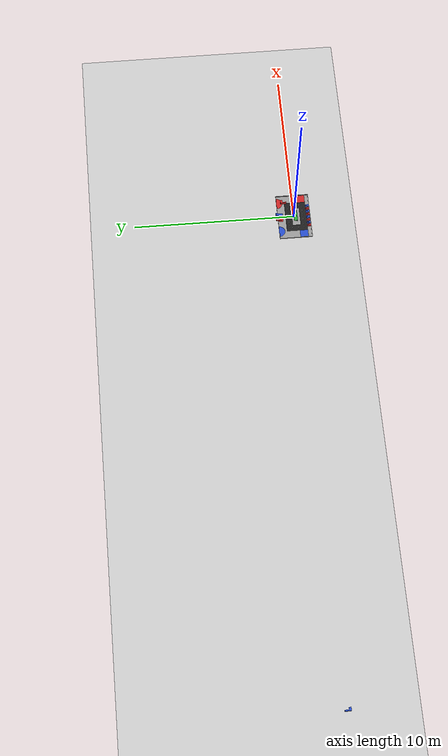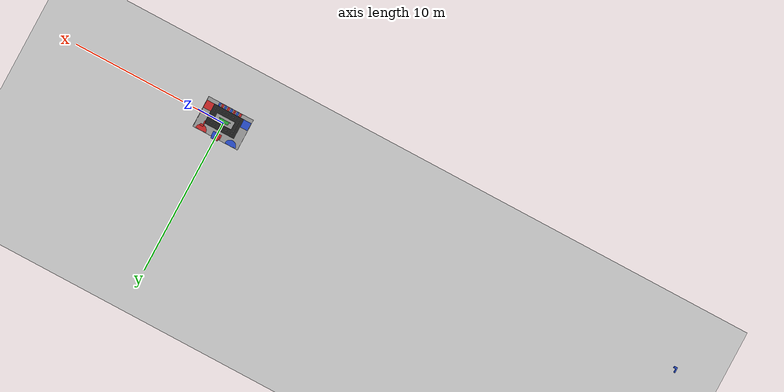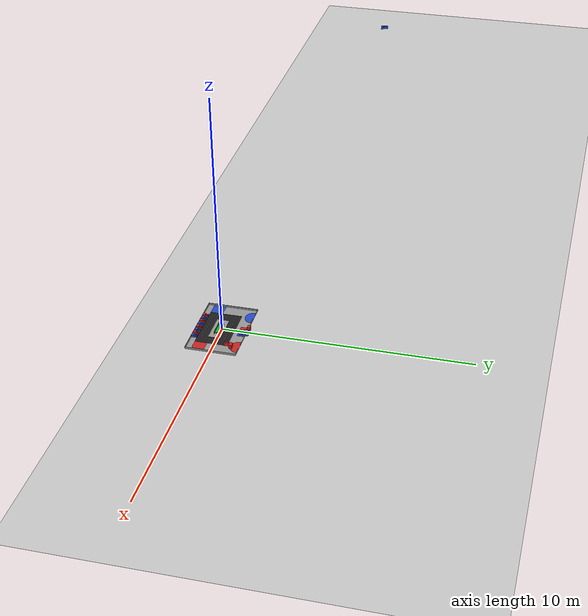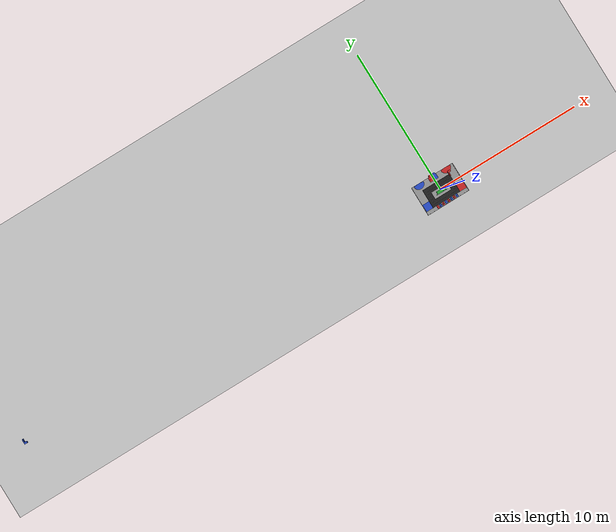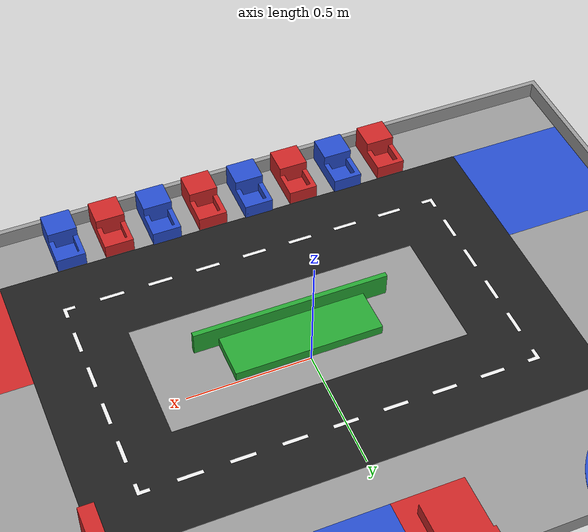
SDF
<sdf version="1.6">
 <world name="default">
  <light name="sun" type="directional">
   <pose>0 0 10 0 -0 0</pose>
   <diffuse>0.8 0.8 0.8 1</diffuse>
   <specular>0.2 0.2 0.2 1</specular>
   <attenuation>
    <range>1000</range>
    <constant>0.9</constant>
    <linear>0.01</linear>
    <quadratic>0.001</quadratic>
   </attenuation>
   <direction>-0.5 0.1 -0.9</direction>
  </light>
  <gravity>0 0 -9.8</gravity>
  <magnetic_field>6e-06 2.3e-05 -4.2e-05</magnetic_field>
  <atmosphere type="adiabatic"/>
  <physics name="default_physics" default="0" type="ode">
   <max_step_size>0.001</max_step_size>
   <real_time_factor>1</real_time_factor>
   <real_time_update_rate>1000</real_time_update_rate>
  </physics>
  <scene><ambient>0.4 0.4 0.4 1</ambient><background>0.7 0.7 0.7 1</background><shadows>1</shadows></scene>
  <audio><device>default</device></audio>
  <spherical_coordinates>
   <surface_model>EARTH_WGS84</surface_model>
   <latitude_deg>0</latitude_deg>
   <longitude_deg>0</longitude_deg>
   <elevation>0</elevation>
   <heading_deg>0</heading_deg>
  </spherical_coordinates>
  <model name="ground_plane">
   <static>1</static>
   <link name="link">
    <collision name="collision">
     <geometry><plane><normal>0 0 1</normal><size>100 100</size></plane></geometry>
     <surface><friction><ode><mu>100</mu><mu2>50</mu2></ode></friction></surface>
    </collision>
    <visual name="visual">
     <cast_shadows>0</cast_shadows>
     <geometry><plane><normal>0 0 1</normal><size>100 100</size></plane></geometry>
     <material>
      <script><uri>file://media/materials/scripts/gazebo.material</uri><name>Gazebo/Grey</name></script>
     </material>
    </visual>
   </link>
   <pose>3.08213 1.05988 0 0 -0 0</pose>
  </model>
  <model name="background">
   <static>1</static>
   <link name="link_0">
    <inertial>
     <mass>1</mass>
     <inertia>
      <ixx>0.166667</ixx>
      <ixy>0</ixy>
      <ixz>0</ixz>
      <iyy>0.166667</iyy>
      <iyz>0</iyz>
      <izz>0.166667</izz>
     </inertia>
    </inertial>
    <visual name="visual">
     <geometry><mesh><uri>model://playground.dae</uri><scale>1 1 1</scale></mesh></geometry>
     <material>
      <lighting>1</lighting>
      <script><uri>file://media/materials/scripts/gazebo.material</uri><name>Gazebo/Grey</name></script>
      <shader type="vertex"><normal_map>__default__</normal_map></shader>
      <ambient>0.3 0.3 0.3 1</ambient>
      <diffuse>0.7 0.7 0.7 1</diffuse>
      <specular>0.01 0.01 0.01 1</specular>
      <emissive>0 0 0 1</emissive>
     </material>
    </visual>
    <collision name="collision">
     <geometry><mesh><uri>model://playground.dae</uri><scale>1 1 1</scale></mesh></geometry>
     <surface>
      <friction>
       <ode><mu>1</mu><mu2>1</mu2><fdir1>0 0 0</fdir1><slip1>0</slip1><slip2>0</slip2></ode>
       <torsional>
        <coefficient>1</coefficient>
        <patch_radius>0</patch_radius>
        <surface_radius>0</surface_radius>
        <use_patch_radius>1</use_patch_radius>
        <ode><slip>0</slip></ode>
       </torsional>
      </friction>
      <bounce><restitution_coefficient>0</restitution_coefficient><threshold>1e+06</threshold></bounce>
      <contact>
       <collide_without_contact>0</collide_without_contact>
       <collide_without_contact_bitmask>1</collide_without_contact_bitmask>
       <collide_bitmask>1</collide_bitmask>
       <ode>
        <soft_cfm>0</soft_cfm>
        <soft_erp>0.2</soft_erp>
        <kp>1e+13</kp>
        <kd>1</kd>
        <max_vel>0.01</max_vel>
        <min_depth>0</min_depth>
       </ode>
       <bullet>
        <split_impulse>1</split_impulse>
        <split_impulse_penetration_threshold>-0.01</split_impulse_penetration_threshold>
        <soft_cfm>0</soft_cfm>
        <soft_erp>0.2</soft_erp>
        <kp>1e+13</kp>
        <kd>1</kd>
       </bullet>
      </contact>
     </surface>
    </collision>
   </link>
   <static>0</static>
  </model>
  <model name="asphalt">
   <static>1</static>
   <link name="link_1">
    <inertial>
     <mass>1</mass>
     <inertia>
      <ixx>0.166667</ixx>
      <ixy>0</ixy>
      <ixz>0</ixz>
      <iyy>0.166667</iyy>
      <iyz>0</iyz>
      <izz>0.166667</izz>
     </inertia>
    </inertial>
    <visual name="visual">
     <geometry><mesh><uri>model://asphalt.dae</uri><scale>1 1 1</scale></mesh></geometry>
     <material>
      <lighting>1</lighting>
      <script><uri>file://media/materials/scripts/gazebo.material</uri><name>Gazebo/Black</name></script>
      <shader type="vertex"><normal_map>__default__</normal_map></shader>
      <ambient>0 0 0 1</ambient>
      <diffuse>0 0 0 1</diffuse>
      <specular>0.1 0.1 0.1 1</specular>
      <emissive>0 0 0 1</emissive>
     </material>
    </visual>
    <collision name="collision">
     <geometry><mesh><uri>model://asphalt.dae</uri><scale>1 1 1</scale></mesh></geometry>
     <surface>
      <friction>
       <ode><mu>1</mu><mu2>1</mu2><fdir1>0 0 0</fdir1><slip1>0</slip1><slip2>0</slip2></ode>
       <torsional>
        <coefficient>1</coefficient>
        <patch_radius>0</patch_radius>
        <surface_radius>0</surface_radius>
        <use_patch_radius>1</use_patch_radius>
        <ode><slip>0</slip></ode>
       </torsional>
      </friction>
      <bounce><restitution_coefficient>0</restitution_coefficient><threshold>1e+06</threshold></bounce>
      <contact>
       <collide_without_contact>0</collide_without_contact>
       <collide_without_contact_bitmask>1</collide_without_contact_bitmask>
       <collide_bitmask>1</collide_bitmask>
       <ode>
        <soft_cfm>0</soft_cfm>
        <soft_erp>0.2</soft_erp>
        <kp>1e+13</kp>
        <kd>1</kd>
        <max_vel>0.01</max_vel>
        <min_depth>0</min_depth>
       </ode>
       <bullet>
        <split_impulse>1</split_impulse>
        <split_impulse_penetration_threshold>-0.01</split_impulse_penetration_threshold>
        <soft_cfm>0</soft_cfm>
        <soft_erp>0.2</soft_erp>
        <kp>1e+13</kp>
        <kd>1</kd>
       </bullet>
      </contact>
     </surface>
    </collision>
   </link>
   <static>0</static>
  </model>
  <model name="stripes">
   <static>1</static>
   <link name="link_2">
    <inertial>
     <mass>1</mass>
     <inertia>
      <ixx>0.166667</ixx>
      <ixy>0</ixy>
      <ixz>0</ixz>
      <iyy>0.166667</iyy>
      <iyz>0</iyz>
      <izz>0.166667</izz>
     </inertia>
    </inertial>
    <pose>-0 0.0001 -0.009044 0 -0 0</pose>
    <visual name="visual">
     <geometry><mesh><uri>model://stripes.dae</uri><scale>1 1 1</scale></mesh></geometry>
     <material>
      <lighting>1</lighting>
      <script><uri>file://media/materials/scripts/gazebo.material</uri><name>Gazebo/White</name></script>
      <shader type="vertex"><normal_map>__default__</normal_map></shader>
      <ambient>1 1 1 1</ambient>
      <diffuse>0.7 0.7 0.7 1</diffuse>
      <specular>0.01 0.01 0.01 1</specular>
      <emissive>0 0 0 1</emissive>
     </material>
    </visual>
    <collision name="collision">
     <geometry><mesh><uri>model://stripes.dae</uri><scale>1 1 1</scale></mesh></geometry>
     <surface>
      <friction>
       <ode><mu>1</mu><mu2>1</mu2><fdir1>0 0 0</fdir1><slip1>0</slip1><slip2>0</slip2></ode>
       <torsional>
        <coefficient>1</coefficient>
        <patch_radius>0</patch_radius>
        <surface_radius>0</surface_radius>
        <use_patch_radius>1</use_patch_radius>
        <ode><slip>0</slip></ode>
       </torsional>
      </friction>
      <bounce><restitution_coefficient>0</restitution_coefficient><threshold>1e+06</threshold></bounce>
      <contact>
       <collide_without_contact>0</collide_without_contact>
       <collide_without_contact_bitmask>1</collide_without_contact_bitmask>
       <collide_bitmask>1</collide_bitmask>
       <ode>
        <soft_cfm>0</soft_cfm>
        <soft_erp>0.2</soft_erp>
        <kp>1e+13</kp>
        <kd>1</kd>
        <max_vel>0.01</max_vel>
        <min_depth>0</min_depth>
       </ode>
       <bullet>
        <split_impulse>1</split_impulse>
        <split_impulse_penetration_threshold>-0.01</split_impulse_penetration_threshold>
        <soft_cfm>0</soft_cfm>
        <soft_erp>0.2</soft_erp>
        <kp>1e+13</kp>
        <kd>1</kd>
       </bullet>
      </contact>
     </surface>
    </collision>
   </link>
   <static>0</static>
  </model>
  <model name="blue_truck_target">
   <static>1</static>
   <link name="link_0">
    <inertial>
     <mass>1</mass>
     <inertia>
      <ixx>0.166667</ixx>
      <ixy>0</ixy>
      <ixz>0</ixz>
      <iyy>0.166667</iyy>
      <iyz>0</iyz>
      <izz>0.166667</izz>
     </inertia>
    </inertial>
    <visual name="visual">
     <geometry><mesh><uri>model://blue_truck_target.dae</uri><scale>1 1 1</scale></mesh></geometry>
     <material>
      <lighting>1</lighting>
      <script><uri>file://media/materials/scripts/gazebo.material</uri><name>Gazebo/Blue</name></script>
      <shader type="vertex"><normal_map>__default__</normal_map></shader>
      <ambient>0 0 1 1</ambient>
      <diffuse>0 0 1 1</diffuse>
      <specular>0.1 0.1 0.1 1</specular>
      <emissive>0 0 0 1</emissive>
     </material>
    </visual>
    <collision name="collision">
     <geometry><mesh><uri>model://blue_truck_target.dae</uri><scale>1 1 1</scale></mesh></geometry>
     <surface>
      <friction>
       <ode><mu>1</mu><mu2>1</mu2><fdir1>0 0 0</fdir1><slip1>0</slip1><slip2>0</slip2></ode>
       <torsional>
        <coefficient>1</coefficient>
        <patch_radius>0</patch_radius>
        <surface_radius>0</surface_radius>
        <use_patch_radius>1</use_patch_radius>
        <ode><slip>0</slip></ode>
       </torsional>
      </friction>
      <bounce><restitution_coefficient>0</restitution_coefficient><threshold>1e+06</threshold></bounce>
      <contact>
       <collide_without_contact>0</collide_without_contact>
       <collide_without_contact_bitmask>1</collide_without_contact_bitmask>
       <collide_bitmask>1</collide_bitmask>
       <ode>
        <soft_cfm>0</soft_cfm>
        <soft_erp>0.2</soft_erp>
        <kp>1e+13</kp>
        <kd>1</kd>
        <max_vel>0.01</max_vel>
        <min_depth>0</min_depth>
       </ode>
       <bullet>
        <split_impulse>1</split_impulse>
        <split_impulse_penetration_threshold>-0.01</split_impulse_penetration_threshold>
        <soft_cfm>0</soft_cfm>
        <soft_erp>0.2</soft_erp>
        <kp>1e+13</kp>
        <kd>1</kd>
       </bullet>
      </contact>
     </surface>
    </collision>
   </link>
   <link name="link_1">
    <inertial>
     <mass>1</mass>
     <inertia>
      <ixx>0.166667</ixx>
      <ixy>0</ixy>
      <ixz>0</ixz>
      <iyy>0.166667</iyy>
      <iyz>0</iyz>
      <izz>0.166667</izz>
     </inertia>
    </inertial>
    <visual name="visual">
     <geometry><mesh><uri>model://red_truck_target.dae</uri><scale>1 1 1</scale></mesh></geometry>
     <material>
      <lighting>1</lighting>
      <script><uri>file://media/materials/scripts/gazebo.material</uri><name>Gazebo/Red</name></script>
      <shader type="vertex"><normal_map>__default__</normal_map></shader>
      <ambient>1 0 0 1</ambient>
      <diffuse>1 0 0 1</diffuse>
      <specular>0.1 0.1 0.1 1</specular>
      <emissive>0 0 0 1</emissive>
     </material>
    </visual>
    <collision name="collision">
     <geometry><mesh><uri>model://red_truck_target.dae</uri><scale>1 1 1</scale></mesh></geometry>
     <surface>
      <friction>
       <ode><mu>1</mu><mu2>1</mu2><fdir1>0 0 0</fdir1><slip1>0</slip1><slip2>0</slip2></ode>
       <torsional>
        <coefficient>1</coefficient>
        <patch_radius>0</patch_radius>
        <surface_radius>0</surface_radius>
        <use_patch_radius>1</use_patch_radius>
        <ode><slip>0</slip></ode>
       </torsional>
      </friction>
      <bounce><restitution_coefficient>0</restitution_coefficient><threshold>1e+06</threshold></bounce>
      <contact>
       <collide_without_contact>0</collide_without_contact>
       <collide_without_contact_bitmask>1</collide_without_contact_bitmask>
       <collide_bitmask>1</collide_bitmask>
       <ode>
        <soft_cfm>0</soft_cfm>
        <soft_erp>0.2</soft_erp>
        <kp>1e+13</kp>
        <kd>1</kd>
        <max_vel>0.01</max_vel>
        <min_depth>0</min_depth>
       </ode>
       <bullet>
        <split_impulse>1</split_impulse>
        <split_impulse_penetration_threshold>-0.01</split_impulse_penetration_threshold>
        <soft_cfm>0</soft_cfm>
        <soft_erp>0.2</soft_erp>
        <kp>1e+13</kp>
        <kd>1</kd>
       </bullet>
      </contact>
     </surface>
    </collision>
   </link>
   <static>0</static>
  </model>
  <model name="center">
   <static>1</static>
   <link name="link_2">
    <inertial>
     <mass>1</mass>
     <inertia>
      <ixx>0.166667</ixx>
      <ixy>0</ixy>
      <ixz>0</ixz>
      <iyy>0.166667</iyy>
      <iyz>0</iyz>
      <izz>0.166667</izz>
     </inertia>
    </inertial>
    <visual name="visual">
     <geometry><mesh><uri>model://center.dae</uri><scale>1 1 1</scale></mesh></geometry>
     <material>
      <lighting>1</lighting>
      <script><uri>file://media/materials/scripts/gazebo.material</uri><name>Gazebo/Green</name></script>
      <shader type="vertex"><normal_map>__default__</normal_map></shader>
      <ambient>0 1 0 1</ambient>
      <diffuse>0 1 0 1</diffuse>
      <specular>0.1 0.1 0.1 1</specular>
      <emissive>0 0 0 1</emissive>
     </material>
    </visual>
    <collision name="collision">
     <geometry><mesh><uri>model://center.dae</uri><scale>1 1 1</scale></mesh></geometry>
     <surface>
      <friction>
       <ode><mu>1</mu><mu2>1</mu2><fdir1>0 0 0</fdir1><slip1>0</slip1><slip2>0</slip2></ode>
       <torsional>
        <coefficient>1</coefficient>
        <patch_radius>0</patch_radius>
        <surface_radius>0</surface_radius>
        <use_patch_radius>1</use_patch_radius>
        <ode><slip>0</slip></ode>
       </torsional>
      </friction>
      <bounce><restitution_coefficient>0</restitution_coefficient><threshold>1e+06</threshold></bounce>
      <contact>
       <collide_without_contact>0</collide_without_contact>
       <collide_without_contact_bitmask>1</collide_without_contact_bitmask>
       <collide_bitmask>1</collide_bitmask>
       <ode>
        <soft_cfm>0</soft_cfm>
        <soft_erp>0.2</soft_erp>
        <kp>1e+13</kp>
        <kd>1</kd>
        <max_vel>0.01</max_vel>
        <min_depth>0</min_depth>
       </ode>
       <bullet>
        <split_impulse>1</split_impulse>
        <split_impulse_penetration_threshold>-0.01</split_impulse_penetration_threshold>
        <soft_cfm>0</soft_cfm>
        <soft_erp>0.2</soft_erp>
        <kp>1e+13</kp>
        <kd>1</kd>
       </bullet>
      </contact>
     </surface>
    </collision>
   </link>
   <static>0</static>
  </model>
  <model name="red_square">
   <static>1</static>
   <link name="link_5">
    <inertial>
     <mass>1</mass>
     <inertia>
      <ixx>0.166667</ixx>
      <ixy>0</ixy>
      <ixz>0</ixz>
      <iyy>0.166667</iyy>
      <iyz>0</iyz>
      <izz>0.166667</izz>
     </inertia>
    </inertial>
    <visual name="visual">
     <geometry><mesh><uri>model://blue_square.dae</uri><scale>1 1 1</scale></mesh></geometry>
     <material>
      <lighting>1</lighting>
      <script><uri>file://media/materials/scripts/gazebo.material</uri><name>Gazebo/Blue</name></script>
      <shader type="vertex"><normal_map>__default__</normal_map></shader>
      <ambient>0 0 1 1</ambient>
      <diffuse>0 0 1 1</diffuse>
      <specular>0.1 0.1 0.1 1</specular>
      <emissive>0 0 0 1</emissive>
     </material>
    </visual>
    <collision name="collision">
     <geometry><mesh><uri>model://blue_square.dae</uri><scale>1 1 1</scale></mesh></geometry>
     <surface>
      <friction>
       <ode><mu>1</mu><mu2>1</mu2><fdir1>0 0 0</fdir1><slip1>0</slip1><slip2>0</slip2></ode>
       <torsional>
        <coefficient>1</coefficient>
        <patch_radius>0</patch_radius>
        <surface_radius>0</surface_radius>
        <use_patch_radius>1</use_patch_radius>
        <ode><slip>0</slip></ode>
       </torsional>
      </friction>
      <bounce><restitution_coefficient>0</restitution_coefficient><threshold>1e+06</threshold></bounce>
      <contact>
       <collide_without_contact>0</collide_without_contact>
       <collide_without_contact_bitmask>1</collide_without_contact_bitmask>
       <collide_bitmask>1</collide_bitmask>
       <ode>
        <soft_cfm>0</soft_cfm>
        <soft_erp>0.2</soft_erp>
        <kp>1e+13</kp>
        <kd>1</kd>
        <max_vel>0.01</max_vel>
        <min_depth>0</min_depth>
       </ode>
       <bullet>
        <split_impulse>1</split_impulse>
        <split_impulse_penetration_threshold>-0.01</split_impulse_penetration_threshold>
        <soft_cfm>0</soft_cfm>
        <soft_erp>0.2</soft_erp>
        <kp>1e+13</kp>
        <kd>1</kd>
       </bullet>
      </contact>
     </surface>
    </collision>
   </link>
   <link name="link_6">
    <inertial>
     <mass>1</mass>
     <inertia>
      <ixx>0.166667</ixx>
      <ixy>0</ixy>
      <ixz>0</ixz>
      <iyy>0.166667</iyy>
      <iyz>0</iyz>
      <izz>0.166667</izz>
     </inertia>
    </inertial>
    <visual name="visual">
     <geometry><mesh><uri>model://red_square.dae</uri><scale>1 1 1</scale></mesh></geometry>
     <material>
      <lighting>1</lighting>
      <script><uri>file://media/materials/scripts/gazebo.material</uri><name>Gazebo/Red</name></script>
      <shader type="vertex"><normal_map>__default__</normal_map></shader>
      <ambient>1 0 0 1</ambient>
      <diffuse>1 0 0 1</diffuse>
      <specular>0.1 0.1 0.1 1</specular>
      <emissive>0 0 0 1</emissive>
     </material>
    </visual>
    <collision name="collision">
     <geometry><mesh><uri>model://red_square.dae</uri><scale>1 1 1</scale></mesh></geometry>
     <surface>
      <friction>
       <ode><mu>1</mu><mu2>1</mu2><fdir1>0 0 0</fdir1><slip1>0</slip1><slip2>0</slip2></ode>
       <torsional>
        <coefficient>1</coefficient>
        <patch_radius>0</patch_radius>
        <surface_radius>0</surface_radius>
        <use_patch_radius>1</use_patch_radius>
        <ode><slip>0</slip></ode>
       </torsional>
      </friction>
      <bounce><restitution_coefficient>0</restitution_coefficient><threshold>1e+06</threshold></bounce>
      <contact>
       <collide_without_contact>0</collide_without_contact>
       <collide_without_contact_bitmask>1</collide_without_contact_bitmask>
       <collide_bitmask>1</collide_bitmask>
       <ode>
        <soft_cfm>0</soft_cfm>
        <soft_erp>0.2</soft_erp>
        <kp>1e+13</kp>
        <kd>1</kd>
        <max_vel>0.01</max_vel>
        <min_depth>0</min_depth>
       </ode>
       <bullet>
        <split_impulse>1</split_impulse>
        <split_impulse_penetration_threshold>-0.01</split_impulse_penetration_threshold>
        <soft_cfm>0</soft_cfm>
        <soft_erp>0.2</soft_erp>
        <kp>1e+13</kp>
        <kd>1</kd>
       </bullet>
      </contact>
     </surface>
    </collision>
   </link>
   <static>0</static>
  </model>
  <model name="blue_half_cylinder">
   <static>1</static>
   <link name="link_7">
    <inertial>
     <mass>1</mass>
     <inertia>
      <ixx>0.166667</ixx>
      <ixy>0</ixy>
      <ixz>0</ixz>
      <iyy>0.166667</iyy>
      <iyz>0</iyz>
      <izz>0.166667</izz>
     </inertia>
    </inertial>
    <visual name="visual">
     <geometry><mesh><uri>model://red_half_cylinder.dae</uri><scale>1 1 1</scale></mesh></geometry>
     <material>
      <lighting>1</lighting>
      <script><uri>file://media/materials/scripts/gazebo.material</uri><name>Gazebo/Red</name></script>
      <shader type="vertex"><normal_map>__default__</normal_map></shader>
      <ambient>1 0 0 1</ambient>
      <diffuse>1 0 0 1</diffuse>
      <specular>0.1 0.1 0.1 1</specular>
      <emissive>0 0 0 1</emissive>
     </material>
    </visual>
    <collision name="collision">
     <geometry><mesh><uri>model://red_half_cylinder.dae</uri><scale>1 1 1</scale></mesh></geometry>
     <surface>
      <friction>
       <ode><mu>1</mu><mu2>1</mu2><fdir1>0 0 0</fdir1><slip1>0</slip1><slip2>0</slip2></ode>
       <torsional>
        <coefficient>1</coefficient>
        <patch_radius>0</patch_radius>
        <surface_radius>0</surface_radius>
        <use_patch_radius>1</use_patch_radius>
        <ode><slip>0</slip></ode>
       </torsional>
      </friction>
      <bounce><restitution_coefficient>0</restitution_coefficient><threshold>1e+06</threshold></bounce>
      <contact>
       <collide_without_contact>0</collide_without_contact>
       <collide_without_contact_bitmask>1</collide_without_contact_bitmask>
       <collide_bitmask>1</collide_bitmask>
       <ode>
        <soft_cfm>0</soft_cfm>
        <soft_erp>0.2</soft_erp>
        <kp>1e+13</kp>
        <kd>1</kd>
        <max_vel>0.01</max_vel>
        <min_depth>0</min_depth>
       </ode>
       <bullet>
        <split_impulse>1</split_impulse>
        <split_impulse_penetration_threshold>-0.01</split_impulse_penetration_threshold>
        <soft_cfm>0</soft_cfm>
        <soft_erp>0.2</soft_erp>
        <kp>1e+13</kp>
        <kd>1</kd>
       </bullet>
      </contact>
     </surface>
    </collision>
   </link>
   <link name="link_8">
    <inertial>
     <mass>1</mass>
     <inertia>
      <ixx>0.166667</ixx>
      <ixy>0</ixy>
      <ixz>0</ixz>
      <iyy>0.166667</iyy>
      <iyz>0</iyz>
      <izz>0.166667</izz>
     </inertia>
    </inertial>
    <visual name="visual">
     <geometry><mesh><uri>model://blue_half_cylinder.dae</uri><scale>1 1 1</scale></mesh></geometry>
     <material>
      <lighting>1</lighting>
      <script><uri>file://media/materials/scripts/gazebo.material</uri><name>Gazebo/Blue</name></script>
      <shader type="vertex"><normal_map>__default__</normal_map></shader>
      <ambient>0 0 1 1</ambient>
      <diffuse>0 0 1 1</diffuse>
      <specular>0.1 0.1 0.1 1</specular>
      <emissive>0 0 0 1</emissive>
     </material>
    </visual>
    <collision name="collision">
     <geometry><mesh><uri>model://blue_half_cylinder.dae</uri><scale>1 1 1</scale></mesh></geometry>
     <surface>
      <friction>
       <ode><mu>1</mu><mu2>1</mu2><fdir1>0 0 0</fdir1><slip1>0</slip1><slip2>0</slip2></ode>
       <torsional>
        <coefficient>1</coefficient>
        <patch_radius>0</patch_radius>
        <surface_radius>0</surface_radius>
        <use_patch_radius>1</use_patch_radius>
        <ode><slip>0</slip></ode>
       </torsional>
      </friction>
      <bounce><restitution_coefficient>0</restitution_coefficient><threshold>1e+06</threshold></bounce>
      <contact>
       <collide_without_contact>0</collide_without_contact>
       <collide_without_contact_bitmask>1</collide_without_contact_bitmask>
       <collide_bitmask>1</collide_bitmask>
       <ode>
        <soft_cfm>0</soft_cfm>
        <soft_erp>0.2</soft_erp>
        <kp>1e+13</kp>
        <kd>1</kd>
        <max_vel>0.01</max_vel>
        <min_depth>0</min_depth>
       </ode>
       <bullet>
        <split_impulse>1</split_impulse>
        <split_impulse_penetration_threshold>-0.01</split_impulse_penetration_threshold>
        <soft_cfm>0</soft_cfm>
        <soft_erp>0.2</soft_erp>
        <kp>1e+13</kp>
        <kd>1</kd>
       </bullet>
      </contact>
     </surface>
    </collision>
   </link>
   <static>0</static>
  </model>
  <include><uri>model://red_truck</uri><pose>1.06165 0.691468 0.080746 0 -0 0</pose></include>
  <include><uri>model://blue_truck</uri><pose>-30.81448 0.10004 0.075998 -3.14159 0 0</pose></include>
  <model name="blue_car_1">
   <include><uri>model://blue_car</uri><pose>0.7 -0.913236 0.044351 0 0  1.5708</pose></include>
  </model>
  <model name="blue_car_2">
   <include><uri>model://blue_car</uri><pose>0.3 -0.90834 0.043375 0 0 1.57088</pose></include>
  </model>
  <model name="blue_car_3">
   <include><uri>model://blue_car</uri><pose>-0.1 -0.90834 0.043375 0 0 1.570888</pose></include>
  </model>
  <model name="blue_car_4">
   <include><uri>model://blue_car</uri><pose>-0.5 -0.90834 0.043375 0 0 1.57088</pose></include>
  </model>
  <model name="red_car_1">
   <include><uri>model://red_car</uri><pose>0.5 -0.913236 0.044351 0 0  1.5708</pose></include>
  </model>
  <model name="red_car_2">
   <include><uri>model://red_car</uri><pose>0.1 -0.913236 0.044351 0 0  1.5708</pose></include>
  </model>
  <model name="red_car_3">
   <include><uri>model://red_car</uri><pose>-0.3 -0.913236 0.044351 0 0  1.5708</pose></include>
  </model>
  <model name="red_car_4">
   <include><uri>model://red_car</uri><pose>-0.7 -0.913236 0.044351 0 0  1.5708</pose></include>
  </model>
 </world>
</sdf>

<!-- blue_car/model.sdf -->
<sdf version='1.6'>
<model name='blue_car'>
      <link name='blue_car_link'>
        <inertial>
          <mass>1</mass>
          <inertia>
            <ixx>0.166667</ixx>
            <ixy>0</ixy>
            <ixz>0</ixz>
            <iyy>0.166667</iyy>
            <iyz>0</iyz>
            <izz>0.166667</izz>
          </inertia>
          <pose frame=''>0 0 0 0 -0 0</pose>
        </inertial>
        <pose frame=''>0 0 0 0 -0 0</pose>
        <self_collide>0</self_collide>
        <enable_wind>0</enable_wind>
        <kinematic>0</kinematic>
        <gravity>1</gravity>
        <visual name='visual'>
          <pose frame=''>0 0 0 0 -0 0</pose>
          <geometry>
            <mesh>
              <uri>model://car.dae</uri>
              <scale>1 1 1</scale>
            </mesh>
          </geometry>
          <material>
            <lighting>1</lighting>
            <script>
              <uri>file://media/materials/scripts/gazebo.material</uri>
              <name>Gazebo/Blue</name>
            </script>
            <shader type='vertex'>
              <normal_map>__default__</normal_map>
            </shader>
            <ambient>0 0 1 1</ambient>
            <diffuse>0 0 1 1</diffuse>
            <specular>0.1 0.1 0.1 1</specular>
            <emissive>0 0 0 1</emissive>
          </material>
          <transparency>0</transparency>
          <cast_shadows>1</cast_shadows>
        </visual>
        <collision name='collision'>
          <laser_retro>0</laser_retro>
          <max_contacts>10</max_contacts>
          <pose frame=''>0 0 0 0 -0 0</pose>
          <geometry>
            <mesh>
              <uri>model://car.dae</uri>
              <scale>1 1 1</scale>
            </mesh>
          </geometry>
          <surface>
            <friction>
              <ode>
                <mu>1</mu>
                <mu2>1</mu2>
                <fdir1>0 0 0</fdir1>
                <slip1>0</slip1>
                <slip2>0</slip2>
              </ode>
              <torsional>
                <coefficient>1</coefficient>
                <patch_radius>0</patch_radius>
                <surface_radius>0</surface_radius>
                <use_patch_radius>1</use_patch_radius>
                <ode>
                  <slip>0</slip>
                </ode>
              </torsional>
            </friction>
            <bounce>
              <restitution_coefficient>0</restitution_coefficient>
              <threshold>1e+06</threshold>
            </bounce>
            <contact>
              <collide_without_contact>0</collide_without_contact>
              <collide_without_contact_bitmask>1</collide_without_contact_bitmask>
              <collide_bitmask>1</collide_bitmask>
              <ode>
                <soft_cfm>0</soft_cfm>
                <soft_erp>0.2</soft_erp>
                <kp>1e+13</kp>
                <kd>1</kd>
                <max_vel>0.01</max_vel>
                <min_depth>0</min_depth>
              </ode>
              <bullet>
                <split_impulse>1</split_impulse>
                <split_impulse_penetration_threshold>-0.01</split_impulse_penetration_threshold>
                <soft_cfm>0</soft_cfm>
                <soft_erp>0.2</soft_erp>
                <kp>1e+13</kp>
                <kd>1</kd>
              </bullet>
            </contact>
          </surface>
        </collision>
      </link>
      <static>1</static>
      <allow_auto_disable>1</allow_auto_disable>
      <pose frame=''>0 0 0 0 0 0</pose>
    </model>
</sdf>

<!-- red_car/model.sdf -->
<sdf version='1.6'>
<model name='red_car'>
      <link name='red_car_link'>
        <inertial>
          <mass>1</mass>
          <inertia>
            <ixx>0.166667</ixx>
            <ixy>0</ixy>
            <ixz>0</ixz>
            <iyy>0.166667</iyy>
            <iyz>0</iyz>
            <izz>0.166667</izz>
          </inertia>
          <pose frame=''>0 0 0 0 -0 0</pose>
        </inertial>
        <pose frame=''>0 0 0 0 -0 0</pose>
        <self_collide>0</self_collide>
        <enable_wind>0</enable_wind>
        <kinematic>0</kinematic>
        <gravity>1</gravity>
        <visual name='visual'>
          <pose frame=''>0 0 0 0 -0 0</pose>
          <geometry>
            <mesh>
              <uri>file://../meshes/car.dae</uri>

              <scale>1 1 1</scale>
            </mesh>
          </geometry>
          <material>
            <lighting>1</lighting>
            <script>
              <uri>file://media/materials/scripts/gazebo.material</uri>
              <name>Gazebo/Red</name>
            </script>
            <shader type='vertex'>
              <normal_map>__default__</normal_map>
            </shader>
            <ambient>1 0 0 1</ambient>
            <diffuse>1 0 0 1</diffuse>
            <specular>0.1 0.1 0.1 1</specular>
            <emissive>0 0 0 1</emissive>
          </material>
          <transparency>0</transparency>
          <cast_shadows>1</cast_shadows>
        </visual>
        <collision name='collision'>
          <laser_retro>0</laser_retro>
          <max_contacts>10</max_contacts>
          <pose frame=''>0 0 0 0 -0 0</pose>
          <geometry>
            <mesh>
              <uri>file://../meshes//car.dae</uri>
              <scale>1 1 1</scale>
            </mesh>
          </geometry>
          <surface>
            <friction>
              <ode>
                <mu>1</mu>
                <mu2>1</mu2>
                <fdir1>0 0 0</fdir1>
                <slip1>0</slip1>
                <slip2>0</slip2>
              </ode>
              <torsional>
                <coefficient>1</coefficient>
                <patch_radius>0</patch_radius>
                <surface_radius>0</surface_radius>
                <use_patch_radius>1</use_patch_radius>
                <ode>
                  <slip>0</slip>
                </ode>
              </torsional>
            </friction>
            <bounce>
              <restitution_coefficient>0</restitution_coefficient>
              <threshold>1e+06</threshold>
            </bounce>
            <contact>
              <collide_without_contact>0</collide_without_contact>
              <collide_without_contact_bitmask>1</collide_without_contact_bitmask>
              <collide_bitmask>1</collide_bitmask>
              <ode>
                <soft_cfm>0</soft_cfm>
                <soft_erp>0.2</soft_erp>
                <kp>1e+13</kp>
                <kd>1</kd>
                <max_vel>0.01</max_vel>
                <min_depth>0</min_depth>
              </ode>
              <bullet>
                <split_impulse>1</split_impulse>
                <split_impulse_penetration_threshold>-0.01</split_impulse_penetration_threshold>
                <soft_cfm>0</soft_cfm>
                <soft_erp>0.2</soft_erp>
                <kp>1e+13</kp>
                <kd>1</kd>
              </bullet>
            </contact>
          </surface>
        </collision>
      </link>
      <static>1</static>
      <allow_auto_disable>1</allow_auto_disable>
      <pose frame=''>0 0 0 0 0 0</pose>
    </model>
</sdf>

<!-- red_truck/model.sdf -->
<sdf version='1.6'>
<model name='red_truck'>
      <link name='link'>
        <inertial>
          <mass>0.712</mass>
          <inertia>
            <ixx>0.1</ixx>
            <ixy>0</ixy>
            <ixz>0</ixz>
            <iyy>0.1</iyy>
            <iyz>0</iyz>
            <izz>0.1</izz>
          </inertia>
          <pose frame=''>0 0 0 0 -0 0</pose>
        </inertial>
        <pose frame=''>0 0 0 0 -0 0</pose>
        <gravity>1</gravity>
        <self_collide>0</self_collide>
        <kinematic>0</kinematic>
        <enable_wind>0</enable_wind>
        <visual name='visual'>
          <pose frame=''>0 0 0 0 -0 0</pose>
          <geometry>
            <mesh>
              <uri>model://truck.dae</uri>
              <scale>1 1 1</scale>
            </mesh>
          </geometry>
          <material>
            <lighting>1</lighting>
            <script>
              <uri>file://media/materials/scripts/gazebo.material</uri>
              <name>Gazebo/Red</name>
            </script>
            <shader type='vertex'>
              <normal_map>__default__</normal_map>
            </shader>
            <ambient>1 0 0 1</ambient>
            <diffuse>1 0 0 1</diffuse>
            <specular>0.1 0.1 0.1 1</specular>
            <emissive>0 0 0 1</emissive>
          </material>
          <transparency>0</transparency>
          <cast_shadows>1</cast_shadows>
        </visual>
        <collision name='collision'>
          <laser_retro>0</laser_retro>
          <max_contacts>10</max_contacts>
          <pose frame=''>0 0 0 0 -0 0</pose>
          <geometry>
            <mesh>
              <uri>model://truck.dae</uri>
              <scale>1 1 1</scale>
            </mesh>
          </geometry>
          <surface>
            <friction>
              <ode>
                <mu>1</mu>
                <mu2>1</mu2>
                <fdir1>0 0 0</fdir1>
                <slip1>0</slip1>
                <slip2>0</slip2>
              </ode>
              <torsional>
                <coefficient>1</coefficient>
                <patch_radius>0</patch_radius>
                <surface_radius>0</surface_radius>
                <use_patch_radius>1</use_patch_radius>
                <ode>
                  <slip>0</slip>
                </ode>
              </torsional>
            </friction>
            <bounce>
              <restitution_coefficient>0</restitution_coefficient>
              <threshold>1e+06</threshold>
            </bounce>
            <contact>
              <collide_without_contact>0</collide_without_contact>
              <collide_without_contact_bitmask>1</collide_without_contact_bitmask>
              <collide_bitmask>1</collide_bitmask>
              <ode>
                <soft_cfm>0</soft_cfm>
                <soft_erp>0.2</soft_erp>
                <kp>1e+13</kp>
                <kd>1</kd>
                <max_vel>0.01</max_vel>
                <min_depth>0</min_depth>
              </ode>
              <bullet>
                <split_impulse>1</split_impulse>
                <split_impulse_penetration_threshold>-0.01</split_impulse_penetration_threshold>
                <soft_cfm>0</soft_cfm>
                <soft_erp>0.2</soft_erp>
                <kp>1e+13</kp>
                <kd>1</kd>
              </bullet>
            </contact>
          </surface>
        </collision>
      </link>
      <static>0</static>
      <allow_auto_disable>1</allow_auto_disable>
      <pose frame=''>0 0 0 0 -0 0</pose>
    </model>
</sdf>

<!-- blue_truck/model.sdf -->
<sdf version='1.6'>
<model name='blue_truck'>
      <link name='link'>
        <inertial>
          <mass>0.712</mass>
          <inertia>
            <ixx>0.1</ixx>
            <ixy>0</ixy>
            <ixz>0</ixz>
            <iyy>0.1</iyy>
            <iyz>0</iyz>
            <izz>0.1</izz>
          </inertia>
          <pose frame=''>0 0 0 0 -0 0</pose>
        </inertial>
        <pose frame=''>0 0 0 0 -0 0</pose>
        <gravity>1</gravity>
        <self_collide>0</self_collide>
        <kinematic>0</kinematic>
        <enable_wind>0</enable_wind>
        <visual name='visual'>
          <pose frame=''>0 0 0 0 -0 0</pose>
          <geometry>
            <mesh>
              <uri>model://truck.dae</uri>
              <scale>1 1 1</scale>
            </mesh>
          </geometry>
          <material>
            <lighting>1</lighting>
            <script>
              <uri>file://media/materials/scripts/gazebo.material</uri>
              <name>Gazebo/Blue</name>
            </script>
            <shader type='vertex'>
              <normal_map>__default__</normal_map>
            </shader>
            <ambient>0 0 1 1</ambient>
            <diffuse>0 0 1 1</diffuse>
            <specular>0.1 0.1 0.1 1</specular>
            <emissive>0 0 0 1</emissive>
          </material>
          <transparency>0</transparency>
          <cast_shadows>1</cast_shadows>
        </visual>
        <collision name='collision'>
          <laser_retro>0</laser_retro>
          <max_contacts>10</max_contacts>
          <pose frame=''>0 0 0 0 -0 0</pose>
          <geometry>
            <mesh>
              <uri>model://truck.dae</uri>
              <scale>1 1 1</scale>
            </mesh>
          </geometry>
          <surface>
            <friction>
              <ode>
                <mu>1</mu>
                <mu2>1</mu2>
                <fdir1>0 0 0</fdir1>
                <slip1>0</slip1>
                <slip2>0</slip2>
              </ode>
              <torsional>
                <coefficient>1</coefficient>
                <patch_radius>0</patch_radius>
                <surface_radius>0</surface_radius>
                <use_patch_radius>1</use_patch_radius>
                <ode>
                  <slip>0</slip>
                </ode>
              </torsional>
            </friction>
            <bounce>
              <restitution_coefficient>0</restitution_coefficient>
              <threshold>1e+06</threshold>
            </bounce>
            <contact>
              <collide_without_contact>0</collide_without_contact>
              <collide_without_contact_bitmask>1</collide_without_contact_bitmask>
              <collide_bitmask>1</collide_bitmask>
              <ode>
                <soft_cfm>0</soft_cfm>
                <soft_erp>0.2</soft_erp>
                <kp>1e+13</kp>
                <kd>1</kd>
                <max_vel>0.01</max_vel>
                <min_depth>0</min_depth>
              </ode>
              <bullet>
                <split_impulse>1</split_impulse>
                <split_impulse_penetration_threshold>-0.01</split_impulse_penetration_threshold>
                <soft_cfm>0</soft_cfm>
                <soft_erp>0.2</soft_erp>
                <kp>1e+13</kp>
                <kd>1</kd>
              </bullet>
            </contact>
          </surface>
        </collision>
      </link>
      <static>0</static>
      <allow_auto_disable>1</allow_auto_disable>
      <pose frame=''>0 0 0 0 0 0</pose>
    </model>
</sdf>
